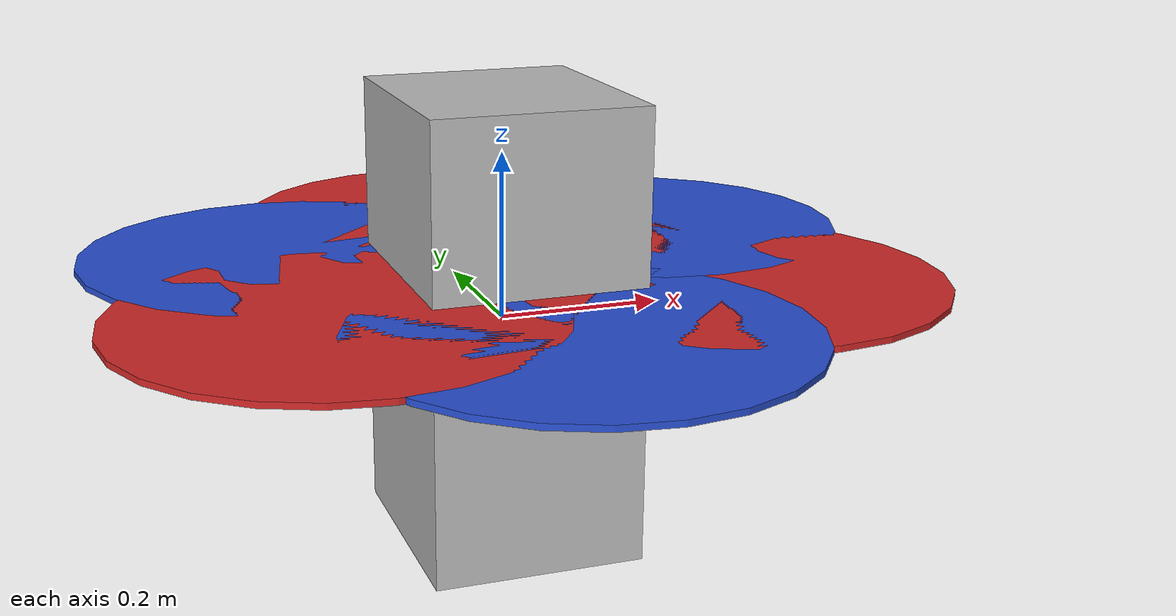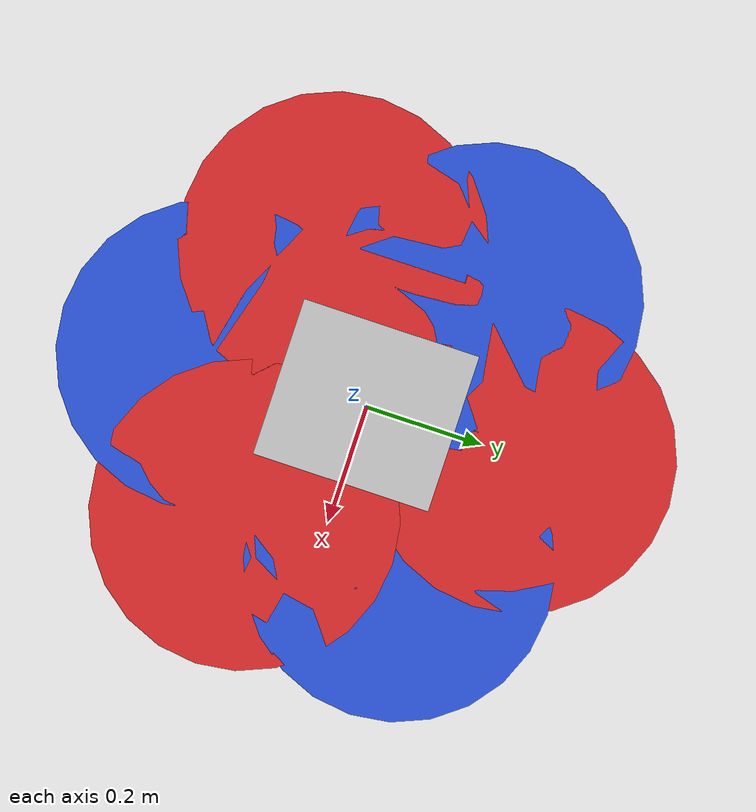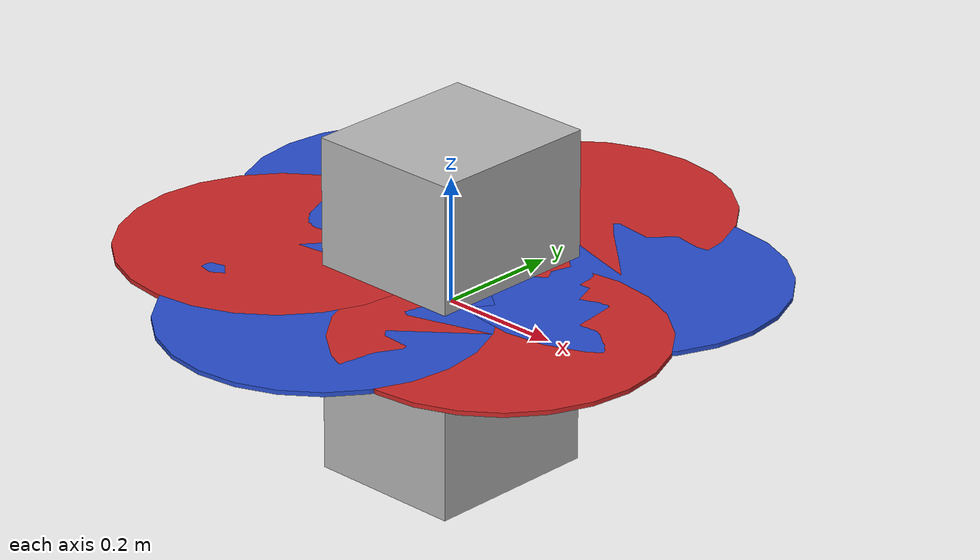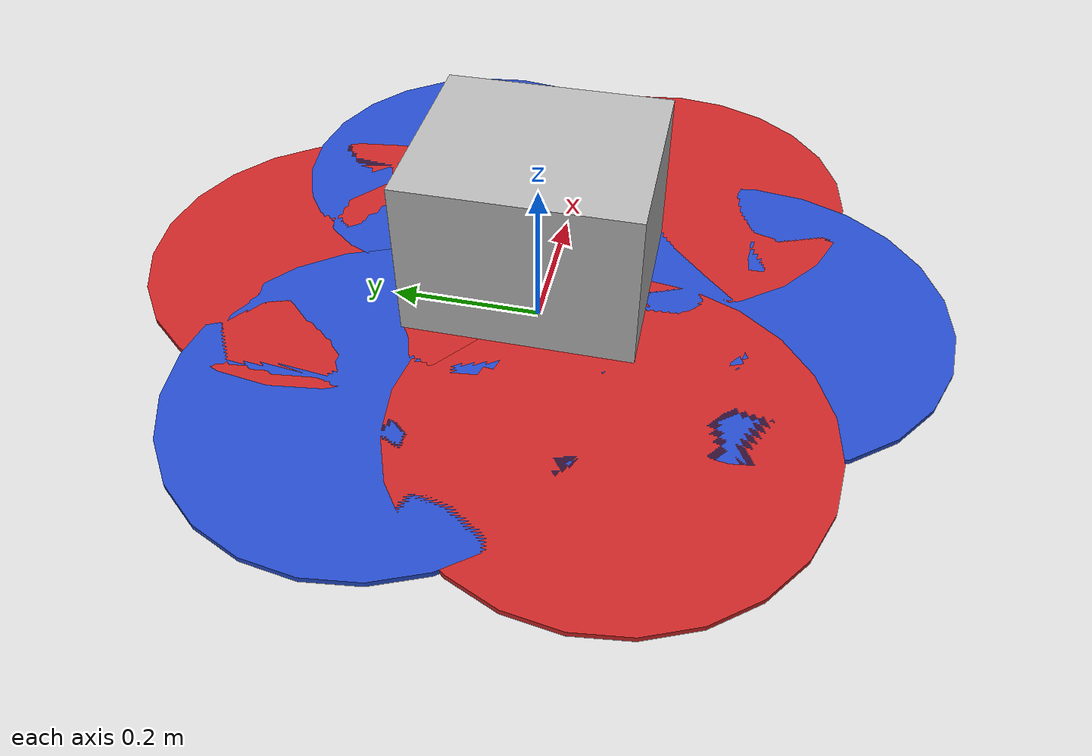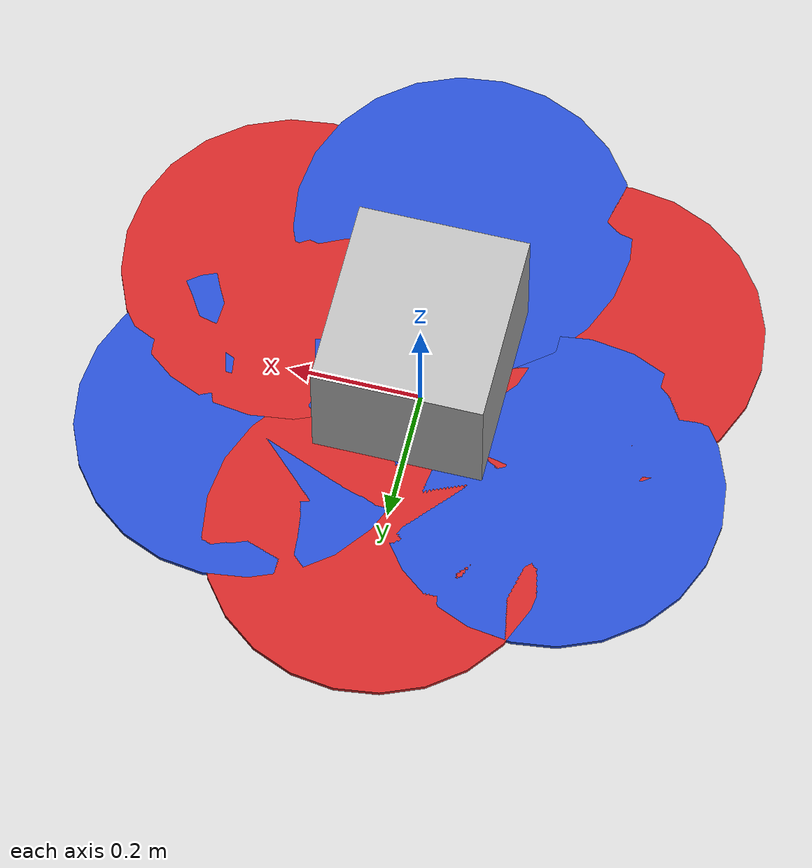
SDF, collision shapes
<?xml version="1.0"?>
<sdf version="1.8">
  <model name="att_model">
    <!-- Initial pose -->
    <pose>0 0 0 0 0 0</pose>

    <!-- Body link (attitude test variant: measured mass/CoM/inertia) -->
    <link name="base_link">
      <pose>0 0 0 0 0 0</pose>
      <inertial>
        <!-- Center of mass: 1.5, 0.34, 32.9 mm -->
        <pose>0.0015 0.00034 0.0329 0 0 0</pose>
        <mass>2.405</mass>
        <!-- Inertia about CoM, converted from g*mm^2 (x1e-9) to kg*m^2 -->
        <inertia>
          <ixx>0.05279912783</ixx>
          <ixy>0.00005806041</ixy>
          <ixz>0.00004497693</ixz>
          <iyy>0.05221052872</iyy>
          <iyz>0.00051803523</iyz>
          <izz>0.09865590814</izz>
        </inertia>
      </inertial>
      <collision name="base_link_collision">
        <pose>0 0 0 0 0 0</pose>
        <geometry>
          <box>
            <size>0.255 0.28845 0.545</size>
          </box>
        </geometry>
        <surface>
          <contact>
            <ode>
              <kp>1e7</kp>
              <kd>1.0</kd>
              <max_vel>0.01</max_vel>
              <min_depth>0.003</min_depth>
            </ode>
          </contact>
          <friction>
            <ode>
              <mu>1.2</mu>
              <mu2>1.2</mu2>
              <fdir1>0 0 0</fdir1>
              <slip1>0.0</slip1>
              <slip2>0.0</slip2>
            </ode>
          </friction>
        </surface>
      </collision>
      <visual name="base_link_visual">
        <pose>0 0 0 0 0 0</pose>
        <geometry>
          <mesh>
            <scale>1 1 1</scale>
            <uri>package://drone_description/models/S550/meshes/S550.dae</uri>
          </mesh>
        </geometry>
      </visual>
    </link>

    <!-- IMU link (52mm above base_link) -->
    <link name="imu_link">
      <pose relative_to="base_link">0 0 0.052 0 0 0</pose>
      <inertial>
        <mass>0.001</mass>
        <inertia>
          <ixx>1e-9</ixx>
          <ixy>0</ixy>
          <ixz>0</ixz>
          <iyy>1e-9</iyy>
          <iyz>0</iyz>
          <izz>1e-9</izz>
        </inertia>
      </inertial>
      <sensor name="imu_sensor" type="imu">
        <always_on>true</always_on>
        <update_rate>250</update_rate>
        <imu>
          <angular_velocity>
            <x>
              <noise type="gaussian">
                <mean>0.0</mean>
                <stddev>7.727e-4</stddev>
                <bias_mean>0.0</bias_mean>
                <bias_stddev>0.0</bias_stddev>
                <dynamic_bias_stddev>1.5e-4</dynamic_bias_stddev>
                <bias_correlation_time>3000.0</bias_correlation_time>
              </noise>
            </x>
            <y>
              <noise type="gaussian">
                <mean>0.0</mean>
                <stddev>7.727e-4</stddev>
                <bias_mean>0.0</bias_mean>
                <bias_stddev>0.0</bias_stddev>
                <dynamic_bias_stddev>1.5e-4</dynamic_bias_stddev>
                <bias_correlation_time>3000.0</bias_correlation_time>
              </noise>
            </y>
            <z>
              <noise type="gaussian">
                <mean>0.0</mean>
                <stddev>7.727e-4</stddev>
                <bias_mean>0.0</bias_mean>
                <bias_stddev>0.0</bias_stddev>
                <dynamic_bias_stddev>1.5e-4</dynamic_bias_stddev>
                <bias_correlation_time>3000.0</bias_correlation_time>
              </noise>
            </z>
          </angular_velocity>
          <linear_acceleration>
            <x>
              <noise type="gaussian">
                <mean>0.0</mean>
                <stddev>1.008e-2</stddev>
                <bias_mean>0.0</bias_mean>
                <bias_stddev>0.0</bias_stddev>
                <dynamic_bias_stddev>8.0e-3</dynamic_bias_stddev>
                <bias_correlation_time>3000.0</bias_correlation_time>
              </noise>
            </x>
            <y>
              <noise type="gaussian">
                <mean>0.0</mean>
                <stddev>1.008e-2</stddev>
                <bias_mean>0.0</bias_mean>
                <bias_stddev>0.0</bias_stddev>
                <dynamic_bias_stddev>8.0e-3</dynamic_bias_stddev>
                <bias_correlation_time>3000.0</bias_correlation_time>
              </noise>
            </y>
            <z>
              <noise type="gaussian">
                <mean>0.0</mean>
                <stddev>1.086e-2</stddev>
                <bias_mean>0.0</bias_mean>
                <bias_stddev>0.0</bias_stddev>
                <dynamic_bias_stddev>8.0e-3</dynamic_bias_stddev>
                <bias_correlation_time>3000.0</bias_correlation_time>
              </noise>
            </z>
          </linear_acceleration>
        </imu>
        <visualize>false</visualize>
      </sensor>
    </link>

    <joint name="imu_joint" type="fixed">
      <parent>base_link</parent>
      <child>imu_link</child>
    </joint>

    <!-- Camera link -->
    <link name="bottom_screw_frame">
      <pose relative_to="base_link">
        0.046 0 -0.088
        0 0.52359877559 0
      </pose>
      <inertial>
        <pose>0 0 0 0 0 0</pose>
        <mass>1e-10</mass>
        <inertia>
          <ixx>1e-10</ixx>
          <ixy>0</ixy>
          <ixz>0</ixz>
          <iyy>1e-10</iyy>
          <iyz>0</iyz>
          <izz>1e-10</izz>
        </inertia>
      </inertial>
    </link>

    <link name="camera_link">
      <pose relative_to="bottom_screw_frame">
        0 0.0175 0.0125
        0 0 0
      </pose>
      <inertial>
        <pose>0 0 0 0 0 0</pose>
        <mass>1e-10</mass>
        <inertia>
          <ixx>1e-10</ixx>
          <ixy>0</ixy>
          <ixz>0</ixz>
          <iyy>1e-10</iyy>
          <iyz>0</iyz>
          <izz>1e-10</izz>
        </inertia>
      </inertial>
      <collision name="camera_collision">
        <pose>0 0 0
              0 0 0
        </pose>
        <geometry>
          <box>
            <size>0.090 0.025 0.025</size>
          </box>
        </geometry>
      </collision>
      <visual name="camera_visual">
        <pose relative_to="camera_link">
          0.0149 -0.0175 0
          1.57079632679 0 1.57079632679
        </pose>
        <geometry>
          <mesh>
            <scale>1 1 1</scale>
            <uri>package://drone_description/models/S550/meshes/d435.dae</uri>
          </mesh>
        </geometry>
      </visual>
    </link>

    <link name="camera_ir_frame">
      <pose relative_to="camera_link">
        0 0 0
        0 0 0
      </pose>
      <inertial>
        <pose>0 0 0 0 0 0</pose>
        <mass>1e-10</mass>
        <inertia>
          <ixx>1e-10</ixx>
          <ixy>0</ixy>
          <ixz>0</ixz>
          <iyy>1e-10</iyy>
          <iyz>0</iyz>
          <izz>1e-10</izz>
        </inertia>
      </inertial>
    </link>

    <link name="camera_ir_optical_frame">
      <pose relative_to="camera_ir_frame">
        0 0 0
        -1.57079632679 0 -1.57079632679
      </pose>
      <inertial>
        <pose>0 0 0 0 0 0</pose>
        <mass>1e-10</mass>
        <inertia>
          <ixx>1e-10</ixx>
          <ixy>0</ixy>
          <ixz>0</ixz>
          <iyy>1e-10</iyy>
          <iyz>0</iyz>
          <izz>1e-10</izz>
        </inertia>
      </inertial>
      <sensor name="camera_left_ir_sensor" type="camera">
        <pose relative_to="camera_ir_frame">
          0 0 0
          0 0 0
        </pose>
        <topic>camera/infra1/image_rect_raw</topic>
        <always_on>true</always_on>
        <update_rate>30</update_rate>
        <visualize>false</visualize>
        <enable_metrics>false</enable_metrics>
        <camera>
          <horizontal_fov>1.3742478184</horizontal_fov>
          <image>
            <width>640</width>
            <height>480</height>
            <format>L_INT8</format>
          </image>
          <clip>
            <near>0.1</near>
            <far>10</far>
          </clip>
          <noise>
            <type>gaussian</type>
            <mean>0.0</mean>
            <stddev>0.007</stddev>
          </noise>
          <distortion>
            <k1>0.0</k1>
            <k2>0.0</k2>
            <k3>0.0</k3>
            <p1>0.0</p1>
            <p2>0.0</p2>
          </distortion>
        </camera>
      </sensor>
      <sensor name="camera_right_ir_sensor" type="camera">
        <pose relative_to="camera_ir_frame">
          0 -0.050 0
          0 0 0
        </pose>
        <topic>camera/infra2/image_rect_raw</topic>
        <always_on>true</always_on>
        <update_rate>30</update_rate>
        <visualize>false</visualize>
        <enable_metrics>false</enable_metrics>
        <camera>
          <horizontal_fov>1.3742478184</horizontal_fov>
          <image>
            <width>640</width>
            <height>480</height>
            <format>L_INT8</format>
          </image>
          <clip>
            <near>0.1</near>
            <far>10</far>
          </clip>
          <noise>
            <type>gaussian</type>
            <mean>0.0</mean>
            <stddev>0.007</stddev>
          </noise>
          <distortion>
            <k1>0.0</k1>
            <k2>0.0</k2>
            <k3>0.0</k3>
            <p1>0.0</p1>
            <p2>0.0</p2>
          </distortion>
        </camera>
      </sensor>
    </link>

    <link name="camera_depth_frame">
      <pose relative_to="camera_link">
        0.015 0 0
        0 0 0
      </pose>
      <inertial>
        <pose>0 0 0 0 0 0</pose>
        <mass>1e-10</mass>
        <inertia>
          <ixx>1e-10</ixx>
          <ixy>0</ixy>
          <ixz>0</ixz>
          <iyy>1e-10</iyy>
          <iyz>0</iyz>
          <izz>1e-10</izz>
        </inertia>
      </inertial>
    </link>

    <link name="camera_depth_optical_frame">
      <pose relative_to="camera_depth_frame">
        0 0 0
        -1.57079632679 0 -1.57079632679
      </pose>
      <inertial>
        <pose>0 0 0 0 0 0</pose>
        <mass>1e-10</mass>
        <inertia>
          <ixx>1e-10</ixx>
          <ixy>0</ixy>
          <ixz>0</ixz>
          <iyy>1e-10</iyy>
          <iyz>0</iyz>
          <izz>1e-10</izz>
        </inertia>
      </inertial>
    </link>

    <joint name="bottom_screw_frame_joint" type="fixed">
      <parent>base_link</parent>
      <child>bottom_screw_frame</child>
    </joint>

    <joint name="camera_link_joint" type="fixed">
      <parent>bottom_screw_frame</parent>
      <child>camera_link</child>
    </joint>

    <joint name="camera_ir_frame_joint" type="fixed">
      <parent>camera_link</parent>
      <child>camera_ir_frame</child>
    </joint>

    <joint name="camera_ir_optical_frame_joint" type="fixed">
      <parent>camera_ir_frame</parent>
      <child>camera_ir_optical_frame</child>
    </joint>

    <joint name="camera_depth_frame_joint" type="fixed">
      <parent>camera_link</parent>
      <child>camera_depth_frame</child>
    </joint>

    <joint name="camera_depth_optical_frame_joint" type="fixed">
      <parent>camera_depth_frame</parent>
      <child>camera_depth_optical_frame</child>
    </joint>

    <!-- Prop links -->
    <link name="S550/front_left">
      <pose>0.2295 0.1325 0.062 0 -0 0</pose>
      <inertial>
        <pose>0 0 0 0 0 0</pose>
        <mass>1e-10</mass>
        <inertia>
          <ixx>2.96e-07</ixx>
          <ixy>0</ixy>
          <ixz>0</ixz>
          <iyy>5.74e-05</iyy>
          <iyz>0</iyz>
          <izz>5.74e-05</izz>
        </inertia>
      </inertial>
      <collision name="S550/front_left_collision">
        <pose>0 0 0 0 0 0</pose>
        <geometry>
          <cylinder>
            <length>0.007</length>
            <radius>0.254</radius>
          </cylinder>
        </geometry>
      </collision>
      <visual name="S550/front_left_visual">
        <pose>0 0 0 0 0 0</pose>
        <geometry>
          <mesh>
            <scale>1 1 1</scale>
            <uri>package://drone_description/models/S550/meshes/apc_10x4_5_ccw.dae</uri>
          </mesh>
        </geometry>
        <material>
          <script>
            <name>Gazebo/Blue</name>
            <uri>file://media/materials/scripts/gazebo.material</uri>
          </script>
        </material>
      </visual>
      <gravity>1</gravity>
    </link>

    <link name="S550/left">
      <pose>0 0.2650 0.062 0 0 0</pose>
      <inertial>
        <pose>0 0 0 0 0 0</pose>
        <mass>1e-10</mass>
        <inertia>
          <ixx>2.96e-07</ixx>
          <ixy>0</ixy>
          <ixz>0</ixz>
          <iyy>5.72e-5</iyy>
          <iyz>0</iyz>
          <izz>5.74e-05</izz>
        </inertia>
      </inertial>
      <collision name="S550/left_collision">
        <pose>0 0 0 0 0 0</pose>
        <geometry>
          <cylinder>
            <length>0.007</length>
            <radius>0.254</radius>
          </cylinder>
        </geometry>
      </collision>
      <visual name="S550/left_visual">
        <pose>0 0 0 0 0 0</pose>
        <geometry>
          <mesh>
            <scale>1 1 1</scale>
            <uri>package://drone_description/models/S550/meshes/apc_10x4_5_cw.dae</uri>
          </mesh>
        </geometry>
        <material>
          <script>
            <name>Gazebo/Red</name>
            <uri>file://media/materials/scripts/gazebo.material</uri>
          </script>
        </material>
      </visual>
      <gravity>1</gravity>
    </link>

    <link name="S550/back_left">
      <pose>-0.2295 0.1325 0.062 0 0 0</pose>
      <inertial>
        <pose>0 0 0 0 0 0</pose>
        <mass>1e-10</mass>
        <inertia>
          <ixx>2.96e-07</ixx>
          <ixy>0</ixy>
          <ixz>0</ixz>
          <iyy>5.72e-5</iyy>
          <iyz>0</iyz>
          <izz>5.74e-05</izz>
        </inertia>
      </inertial>
      <collision name="S550/back_left_collision">
        <pose>0 0 0 0 0 0</pose>
        <geometry>
          <cylinder>
            <length>0.007</length>
            <radius>0.254</radius>
          </cylinder>
        </geometry>
      </collision>
      <visual name="S550/back_left_visual">
        <pose>0 0 0 0 0 0</pose>
        <geometry>
          <mesh>
            <scale>1 1 1</scale>
            <uri>package://drone_description/models/S550/meshes/apc_10x4_5_ccw.dae</uri>
          </mesh>
        </geometry>
        <material>
          <script>
            <name>Gazebo/Blue</name>
            <uri>file://media/materials/scripts/gazebo.material</uri>
          </script>
        </material>
      </visual>
      <gravity>1</gravity>
    </link>

    <link name="S550/back_right">
      <pose>-0.2295 -0.1325 0.062 0 0 0</pose>
      <inertial>
        <pose>0 0 0 0 0 0</pose>
        <mass>1e-10</mass>
        <inertia>
          <ixx>2.96e-07</ixx>
          <ixy>0</ixy>
          <ixz>0</ixz>
          <iyy>5.72e-5</iyy>
          <iyz>0</iyz>
          <izz>5.74e-05</izz>
        </inertia>
      </inertial>
      <collision name="S550/back_right_collision">
        <pose>0 0 0 0 0 0</pose>
        <geometry>
          <cylinder>
            <length>0.007</length>
            <radius>0.254</radius>
          </cylinder>
        </geometry>
      </collision>
      <visual name="S550/back_right_visual">
        <pose>0 0 0 0 0 0</pose>
        <geometry>
          <mesh>
            <scale>1 1 1</scale>
            <uri>package://drone_description/models/S550/meshes/apc_10x4_5_cw.dae</uri>
          </mesh>
        </geometry>
        <material>
          <script>
            <name>Gazebo/Red</name>
            <uri>file://media/materials/scripts/gazebo.material</uri>
          </script>
        </material>
      </visual>
      <gravity>1</gravity>
    </link>

    <link name="S550/right">
      <pose>0 -0.2650 0.062 0 0 0</pose>
      <inertial>
        <pose>0 0 0 0 0 0</pose>
        <mass>1e-10</mass>
        <inertia>
          <ixx>2.96e-07</ixx>
          <ixy>0</ixy>
          <ixz>0</ixz>
          <iyy>5.72e-5</iyy>
          <iyz>0</iyz>
          <izz>5.74e-05</izz>
        </inertia>
      </inertial>
      <collision name="S550/right_collision">
        <pose>0 0 0 0 0 0</pose>
        <geometry>
          <cylinder>
            <length>0.007</length>
            <radius>0.254</radius>
          </cylinder>
        </geometry>
      </collision>
      <visual name="S550/right_visual">
        <pose>0 0 0 0 0 0</pose>
        <geometry>
          <mesh>
            <scale>1 1 1</scale>
            <uri>package://drone_description/models/S550/meshes/apc_10x4_5_ccw.dae</uri>
          </mesh>
        </geometry>
        <material>
          <script>
            <name>Gazebo/Blue</name>
            <uri>file://media/materials/scripts/gazebo.material</uri>
          </script>
        </material>
      </visual>
      <gravity>1</gravity>
    </link>

    <link name="S550/front_right">
      <pose>0.2295 -0.1325 0.062 0 0 0</pose>
      <inertial>
        <pose>0 0 0 0 0 0</pose>
        <mass>1e-10</mass>
        <inertia>
          <ixx>2.96e-07</ixx>
          <ixy>0</ixy>
          <ixz>0</ixz>
          <iyy>5.72e-5</iyy>
          <iyz>0</iyz>
          <izz>5.74e-05</izz>
        </inertia>
      </inertial>
      <collision name="S550/front_right_collision">
        <pose>0 0 0 0 0 0</pose>
        <geometry>
          <cylinder>
            <length>0.007</length>
            <radius>0.254</radius>
          </cylinder>
        </geometry>
      </collision>
      <visual name="S550/front_right_visual">
        <pose>0 0 0 0 0 0</pose>
        <geometry>
          <mesh>
            <scale>1 1 1</scale>
            <uri>package://drone_description/models/S550/meshes/apc_10x4_5_cw.dae</uri>
          </mesh>
        </geometry>
        <material>
          <script>
            <name>Gazebo/Red</name>
            <uri>file://media/materials/scripts/gazebo.material</uri>
          </script>
        </material>
      </visual>
      <gravity>1</gravity>
    </link>

    <!-- Prop joints -->
    <joint name="S550/front_left_joint" type="revolute">
      <child>S550/front_left</child>
      <parent>base_link</parent>
      <axis>
        <xyz>0 0 1</xyz>
        <limit>
          <lower>-1e+16</lower>
          <upper>1e+16</upper>
        </limit>
        <dynamics>
          <spring_reference>0</spring_reference>
          <spring_stiffness>0</spring_stiffness>
        </dynamics>
        <use_parent_model_frame>1</use_parent_model_frame>
      </axis>
    </joint>

    <joint name="S550/left_joint" type="revolute">
      <child>S550/left</child>
      <parent>base_link</parent>
      <axis>
        <xyz>0 0 1</xyz>
        <limit>
          <lower>-1e+16</lower>
          <upper>1e+16</upper>
        </limit>
        <dynamics>
          <spring_reference>0</spring_reference>
          <spring_stiffness>0</spring_stiffness>
        </dynamics>
        <use_parent_model_frame>1</use_parent_model_frame>
      </axis>
    </joint>

    <joint name="S550/back_left_joint" type="revolute">
      <child>S550/back_left</child>
      <parent>base_link</parent>
      <axis>
        <xyz>0 0 1</xyz>
        <limit>
          <lower>-1e+16</lower>
          <upper>1e+16</upper>
        </limit>
        <dynamics>
          <spring_reference>0</spring_reference>
          <spring_stiffness>0</spring_stiffness>
        </dynamics>
        <use_parent_model_frame>1</use_parent_model_frame>
      </axis>
    </joint>

    <joint name="S550/back_right_joint" type="revolute">
      <child>S550/back_right</child>
      <parent>base_link</parent>
      <axis>
        <xyz>0 0 1</xyz>
        <limit>
          <lower>-1e+16</lower>
          <upper>1e+16</upper>
        </limit>
        <dynamics>
          <spring_reference>0</spring_reference>
          <spring_stiffness>0</spring_stiffness>
        </dynamics>
        <use_parent_model_frame>1</use_parent_model_frame>
      </axis>
    </joint>

    <joint name="S550/right_joint" type="revolute">
      <child>S550/right</child>
      <parent>base_link</parent>
      <axis>
        <xyz>0 0 1</xyz>
        <limit>
          <lower>-1e+16</lower>
          <upper>1e+16</upper>
        </limit>
        <dynamics>
          <spring_reference>0</spring_reference>
          <spring_stiffness>0</spring_stiffness>
        </dynamics>
        <use_parent_model_frame>1</use_parent_model_frame>
      </axis>
    </joint>

    <joint name="S550/front_right_joint" type="revolute">
      <child>S550/front_right</child>
      <parent>base_link</parent>
      <axis>
        <xyz>0 0 1</xyz>
        <limit>
          <lower>-1e+16</lower>
          <upper>1e+16</upper>
        </limit>
        <dynamics>
          <spring_reference>0</spring_reference>
          <spring_stiffness>0</spring_stiffness>
        </dynamics>
        <use_parent_model_frame>1</use_parent_model_frame>
      </axis>
    </joint>

    <!-- Multicopter plugins -->
    <plugin
      filename="ignition-gazebo-multicopter-motor-model-system"
      name="gz::sim::systems::MulticopterMotorModel">
      <robotNamespace>S550</robotNamespace>
      <jointName>S550/front_left_joint</jointName>
      <linkName>S550/front_left</linkName>
      <turningDirection>ccw</turningDirection>
      <timeConstantUp>1e-10</timeConstantUp>
      <timeConstantDown>1e-10</timeConstantDown>
      <maxRotVelocity>838</maxRotVelocity>
      <motorConstant>1.17588e-05</motorConstant>
      <momentConstant>0.01569</momentConstant>
      <commandSubTopic>gazebo/command/motor_speed</commandSubTopic>
      <motorNumber>0</motorNumber>
      <rotorDragCoefficient>8.06428e-05</rotorDragCoefficient>
      <rollingMomentCoefficient>1e-06</rollingMomentCoefficient>
      <rotorVelocitySlowdownSim>10</rotorVelocitySlowdownSim>
      <motorType>velocity</motorType>
    </plugin>

    <plugin
      filename="ignition-gazebo-multicopter-motor-model-system"
      name="gz::sim::systems::MulticopterMotorModel">
      <robotNamespace>S550</robotNamespace>
      <jointName>S550/left_joint</jointName>
      <linkName>S550/left</linkName>
      <turningDirection>cw</turningDirection>
      <timeConstantUp>1e-10</timeConstantUp>
      <timeConstantDown>1e-10</timeConstantDown>
      <maxRotVelocity>838</maxRotVelocity>
      <motorConstant>1.17588e-05</motorConstant>
      <momentConstant>0.01569</momentConstant>
      <commandSubTopic>gazebo/command/motor_speed</commandSubTopic>
      <motorNumber>1</motorNumber>
      <rotorDragCoefficient>8.06428e-05</rotorDragCoefficient>
      <rollingMomentCoefficient>1e-06</rollingMomentCoefficient>
      <rotorVelocitySlowdownSim>10</rotorVelocitySlowdownSim>
      <motorType>velocity</motorType>
    </plugin>

    <plugin
      filename="ignition-gazebo-multicopter-motor-model-system"
      name="gz::sim::systems::MulticopterMotorModel">
      <robotNamespace>S550</robotNamespace>
      <jointName>S550/back_left_joint</jointName>
      <linkName>S550/back_left</linkName>
      <turningDirection>ccw</turningDirection>
      <timeConstantUp>1e-10</timeConstantUp>
      <timeConstantDown>1e-10</timeConstantDown>
      <maxRotVelocity>838</maxRotVelocity>
      <motorConstant>1.17588e-05</motorConstant>
      <momentConstant>0.01569</momentConstant>
      <commandSubTopic>gazebo/command/motor_speed</commandSubTopic>
      <motorNumber>2</motorNumber>
      <rotorDragCoefficient>8.06428e-05</rotorDragCoefficient>
      <rollingMomentCoefficient>1e-06</rollingMomentCoefficient>
      <rotorVelocitySlowdownSim>10</rotorVelocitySlowdownSim>
      <motorType>velocity</motorType>
    </plugin>

    <plugin
      filename="ignition-gazebo-multicopter-motor-model-system"
      name="gz::sim::systems::MulticopterMotorModel">
      <robotNamespace>S550</robotNamespace>
      <jointName>S550/back_right_joint</jointName>
      <linkName>S550/back_right</linkName>
      <turningDirection>cw</turningDirection>
      <timeConstantUp>1e-10</timeConstantUp>
      <timeConstantDown>1e-10</timeConstantDown>
      <maxRotVelocity>838</maxRotVelocity>
      <motorConstant>1.17588e-05</motorConstant>
      <momentConstant>0.01569</momentConstant>
      <commandSubTopic>gazebo/command/motor_speed</commandSubTopic>
      <motorNumber>3</motorNumber>
      <rotorDragCoefficient>8.06428e-05</rotorDragCoefficient>
      <rollingMomentCoefficient>1e-06</rollingMomentCoefficient>
      <rotorVelocitySlowdownSim>10</rotorVelocitySlowdownSim>
      <motorType>velocity</motorType>
    </plugin>

    <plugin
      filename="ignition-gazebo-multicopter-motor-model-system"
      name="gz::sim::systems::MulticopterMotorModel">
      <robotNamespace>S550</robotNamespace>
      <jointName>S550/right_joint</jointName>
      <linkName>S550/right</linkName>
      <turningDirection>ccw</turningDirection>
      <timeConstantUp>1e-10</timeConstantUp>
      <timeConstantDown>1e-10</timeConstantDown>
      <maxRotVelocity>838</maxRotVelocity>
      <motorConstant>1.17588e-05</motorConstant>
      <momentConstant>0.01569</momentConstant>
      <commandSubTopic>gazebo/command/motor_speed</commandSubTopic>
      <motorNumber>4</motorNumber>
      <rotorDragCoefficient>8.06428e-05</rotorDragCoefficient>
      <rollingMomentCoefficient>1e-06</rollingMomentCoefficient>
      <rotorVelocitySlowdownSim>10</rotorVelocitySlowdownSim>
      <motorType>velocity</motorType>
    </plugin>

    <plugin
      filename="ignition-gazebo-multicopter-motor-model-system"
      name="gz::sim::systems::MulticopterMotorModel">
      <robotNamespace>S550</robotNamespace>
      <jointName>S550/front_right_joint</jointName>
      <linkName>S550/front_right</linkName>
      <turningDirection>cw</turningDirection>
      <timeConstantUp>1e-10</timeConstantUp>
      <timeConstantDown>1e-10</timeConstantDown>
      <maxRotVelocity>838</maxRotVelocity>
      <motorConstant>1.17588e-05</motorConstant>
      <momentConstant>0.01569</momentConstant>
      <commandSubTopic>gazebo/command/motor_speed</commandSubTopic>
      <motorNumber>5</motorNumber>
      <rotorDragCoefficient>8.06428e-05</rotorDragCoefficient>
      <rollingMomentCoefficient>1e-06</rollingMomentCoefficient>
      <rotorVelocitySlowdownSim>10</rotorVelocitySlowdownSim>
      <motorType>velocity</motorType>
    </plugin>

    <!-- Odom publisher -->

    <plugin
      filename="ignition-gazebo-joint-state-publisher-system"
      name="ignition::gazebo::systems::JointStatePublisher">
    </plugin>

  </model>
</sdf>
